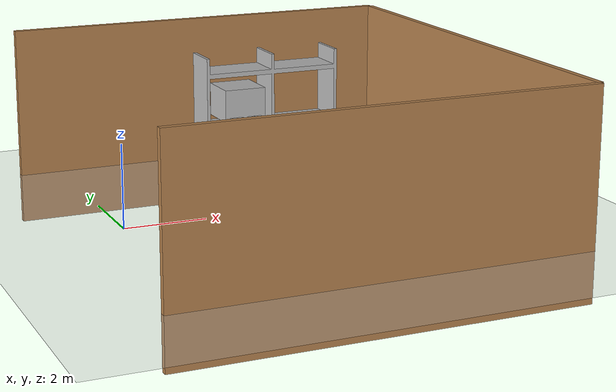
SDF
<?xml version="1.0"?>
<sdf version="1.6">
  <world name="default">

    <include>
      <uri>model://ground_plane</uri>
    </include>

    <include>
      <uri>model://sun</uri>
    </include>

    <scene>
      <shadows>false</shadows>
    </scene>

    <gui fullscreen='0'>
      <camera name='user_camera'>
        <pose frame=''>0.319654 -0.235002 9.29441 0 1.5138 0.009599</pose>
        <view_controller>orbit</view_controller>
        <projection_type>perspective</projection_type>
      </camera>
    </gui>

    <physics type="ode">
      <real_time_update_rate>1000.0</real_time_update_rate>
      <max_step_size>0.001</max_step_size>
      <real_time_factor>1</real_time_factor>
      <ode>
        <solver>
          <type>quick</type>
          <iters>150</iters>
          <precon_iters>0</precon_iters>
          <sor>1.400000</sor>
          <use_dynamic_moi_rescaling>1</use_dynamic_moi_rescaling>
        </solver>
        <constraints>
          <cfm>0.00001</cfm>
          <erp>0.2</erp>
          <contact_max_correcting_vel>2000.000000</contact_max_correcting_vel>
          <contact_surface_layer>0.01000</contact_surface_layer>
        </constraints>
      </ode>
    </physics>

    <model name="agv_warehouse">
      <static>1</static>
      <include>
        <uri>model://agv_warehouse</uri>
      </include>
    </model>

  </world>
</sdf>

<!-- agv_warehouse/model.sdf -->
<sdf version='1.6'>
  <model name='agv_warehouse'>
    <link name='Left_Wall'>
      <pose frame=''>4 5.55 0 0 0 0</pose>
      <self_collide>0</self_collide>
      <kinematic>0</kinematic>
      <visual name='Left_Wall_Visual'>
        <pose frame=''>0 0 1.25 0 -0 0</pose>
        <geometry>
          <box>
            <size>10 0.15 5</size>
          </box>
        </geometry>
        <material>
          <script>
            <uri>file://media/materials/scripts/gazebo.material</uri>
            <name>Gazebo/Wood</name>
          </script>
          <ambient>1 1 1 1</ambient>
          <diffuse>1 1 1 1</diffuse>
          <specular>0.2 0.2 0.2 1</specular>
          <emissive>0 0 0 1</emissive>
        </material>
        <cast_shadows>1</cast_shadows>
        <transparency>0</transparency>
      </visual>
      <collision name='Left_Wall_Collision'>
        <laser_retro>0</laser_retro>
        <max_contacts>10</max_contacts>
        <pose frame=''>0 0 1.25 0 -0 0</pose>
        <geometry>
          <box>
            <size>10 0.15 5</size>
          </box>
        </geometry>
        <surface>
          <friction>
            <ode>
              <mu>1</mu>
              <mu2>1</mu2>
              <fdir1>0 0 0</fdir1>
              <slip1>0</slip1>
              <slip2>0</slip2>
            </ode>
            <torsional>
              <coefficient>1</coefficient>
              <patch_radius>0</patch_radius>
              <surface_radius>0</surface_radius>
              <use_patch_radius>1</use_patch_radius>
              <ode>
                <slip>0</slip>
              </ode>
            </torsional>
          </friction>
          <bounce>
            <restitution_coefficient>0</restitution_coefficient>
            <threshold>1e+06</threshold>
          </bounce>
          <contact>
            <collide_without_contact>0</collide_without_contact>
            <collide_without_contact_bitmask>1</collide_without_contact_bitmask>
            <collide_bitmask>1</collide_bitmask>
            <ode>
              <soft_cfm>0</soft_cfm>
              <soft_erp>0.2</soft_erp>
              <kp>1e+13</kp>
              <kd>1</kd>
              <max_vel>0.01</max_vel>
              <min_depth>0</min_depth>
            </ode>
            <bullet>
              <split_impulse>1</split_impulse>
              <split_impulse_penetration_threshold>-0.01</split_impulse_penetration_threshold>
              <soft_cfm>0</soft_cfm>
              <soft_erp>0.2</soft_erp>
              <kp>1e+13</kp>
              <kd>1</kd>
            </bullet>
          </contact>
        </surface>
      </collision>
    </link>

    <link name='Front_Wall'>
      <pose frame=''>9 0 0 0 0 -1.57</pose>
      <self_collide>0</self_collide>
      <kinematic>0</kinematic>
      <visual name='Front_Wall_Visual'>
        <pose frame=''>0 0 1.25 0 -0 0</pose>
        <geometry>
          <box>
            <size>11 0.15 5</size>
          </box>
        </geometry>
        <material>
          <script>
            <uri>file://media/materials/scripts/gazebo.material</uri>
            <name>Gazebo/Wood</name>
          </script>
          <ambient>1 1 1 1</ambient>
          <diffuse>1 1 1 1</diffuse>
          <specular>0.2 0.2 0.2 1</specular>
          <emissive>0 0 0 1</emissive>
        </material>
        <cast_shadows>1</cast_shadows>
        <transparency>0</transparency>
      </visual>
      <collision name='Front_Wall_Collision'>
        <laser_retro>0</laser_retro>
        <max_contacts>10</max_contacts>
        <pose frame=''>0 0 1.25 0 -0 0</pose>
        <geometry>
          <box>
            <size>11 0.15 5</size>
          </box>
        </geometry>
        <surface>
          <friction>
            <ode>
              <mu>1</mu>
              <mu2>1</mu2>
              <fdir1>0 0 0</fdir1>
              <slip1>0</slip1>
              <slip2>0</slip2>
            </ode>
            <torsional>
              <coefficient>1</coefficient>
              <patch_radius>0</patch_radius>
              <surface_radius>0</surface_radius>
              <use_patch_radius>1</use_patch_radius>
              <ode>
                <slip>0</slip>
              </ode>
            </torsional>
          </friction>
          <bounce>
            <restitution_coefficient>0</restitution_coefficient>
            <threshold>1e+06</threshold>
          </bounce>
          <contact>
            <collide_without_contact>0</collide_without_contact>
            <collide_without_contact_bitmask>1</collide_without_contact_bitmask>
            <collide_bitmask>1</collide_bitmask>
            <ode>
              <soft_cfm>0</soft_cfm>
              <soft_erp>0.2</soft_erp>
              <kp>1e+13</kp>
              <kd>1</kd>
              <max_vel>0.01</max_vel>
              <min_depth>0</min_depth>
            </ode>
            <bullet>
              <split_impulse>1</split_impulse>
              <split_impulse_penetration_threshold>-0.01</split_impulse_penetration_threshold>
              <soft_cfm>0</soft_cfm>
              <soft_erp>0.2</soft_erp>
              <kp>1e+13</kp>
              <kd>1</kd>
            </bullet>
          </contact>
        </surface>
      </collision>
    </link>

    <link name='Right_Wall'>
      <pose frame=''>4 -5.55 0 0 0 0</pose>
      <self_collide>0</self_collide>
      <kinematic>0</kinematic>
      <visual name='Right_Wall_Visual'>
        <pose frame=''>0 0 1.25 0 -0 0</pose>
        <geometry>
          <box>
            <size>10 0.15 5</size>
          </box>
        </geometry>
        <material>
          <script>
            <uri>file://media/materials/scripts/gazebo.material</uri>
            <name>Gazebo/Wood</name>
          </script>
          <ambient>1 1 1 1</ambient>
          <diffuse>1 1 1 1</diffuse>
          <specular>0.2 0.2 0.2 1</specular>
          <emissive>0 0 0 1</emissive>
        </material>
        <cast_shadows>1</cast_shadows>
        <transparency>0</transparency>
      </visual>
      <collision name='Right_Wall_Collision'>
        <laser_retro>0</laser_retro>
        <max_contacts>10</max_contacts>
        <pose frame=''>0 0 1.25 0 -0 0</pose>
        <geometry>
          <box>
            <size>10 0.15 5</size>
          </box>
        </geometry>
        <surface>
          <friction>
            <ode>
              <mu>1</mu>
              <mu2>1</mu2>
              <fdir1>0 0 0</fdir1>
              <slip1>0</slip1>
              <slip2>0</slip2>
            </ode>
            <torsional>
              <coefficient>1</coefficient>
              <patch_radius>0</patch_radius>
              <surface_radius>0</surface_radius>
              <use_patch_radius>1</use_patch_radius>
              <ode>
                <slip>0</slip>
              </ode>
            </torsional>
          </friction>
          <bounce>
            <restitution_coefficient>0</restitution_coefficient>
            <threshold>1e+06</threshold>
          </bounce>
          <contact>
            <collide_without_contact>0</collide_without_contact>
            <collide_without_contact_bitmask>1</collide_without_contact_bitmask>
            <collide_bitmask>1</collide_bitmask>
            <ode>
              <soft_cfm>0</soft_cfm>
              <soft_erp>0.2</soft_erp>
              <kp>1e+13</kp>
              <kd>1</kd>
              <max_vel>0.01</max_vel>
              <min_depth>0</min_depth>
            </ode>
            <bullet>
              <split_impulse>1</split_impulse>
              <split_impulse_penetration_threshold>-0.01</split_impulse_penetration_threshold>
              <soft_cfm>0</soft_cfm>
              <soft_erp>0.2</soft_erp>
              <kp>1e+13</kp>
              <kd>1</kd>
            </bullet>
          </contact>
        </surface>
      </collision>
    </link>

    <model name='reck'>
      <static>1</static>
      <link name='reck'>
        <collision name='collision'>
          <pose frame=''>0 0 0 0 -0 0</pose>
          <geometry>
            <mesh>
              <uri>model://agv_common/meshes/RECK.stl</uri>
              <scale>0.001 0.001 0.001</scale>
            </mesh>
          </geometry>
        </collision>
        <visual name='visual'>
          <geometry>
            <mesh>
              <uri>model://agv_common/meshes/RECK.stl</uri>
              <scale>0.001 0.001 0.001</scale>
            </mesh>
          </geometry>
        </visual>
      </link>
      <pose frame=''>5.3 4.200 0 0 0 0</pose>
    </model>
    <model name='top_pallet'>
      <static>0</static>
      <link name='top_pallet'>
        <collision name='box_coll'>
          <pose frame=''>0 0 0.485 0 -0 0</pose>
          <geometry>
            <box>
              <size>1.1 1.1 0.73</size>
            </box>
          </geometry>
        </collision>
        <collision name='leg_coll'>
          <pose frame=''>0 0 0.06 0 -0 0</pose>
          <geometry>
            <box>
              <size>0.12 1.1 0.12</size>
            </box>
          </geometry>
        </collision>
        <collision name='leg_coll_f'>
          <pose frame=''>0.49 0 0.06 0 -0 0</pose>
          <geometry>
            <box>
              <size>0.12 1.1 0.12</size>
            </box>
          </geometry>
        </collision>
        <collision name='leg_coll_s'>
          <pose frame=''>-0.49 0 0.06 0 -0 0</pose>
          <geometry>
            <box>
              <size>0.12 1.1 0.12</size>
            </box>
          </geometry>
        </collision>
        <visual name='visual'>
          <geometry>
            <mesh>
              <uri>model://agv_common/meshes/PALLET.stl</uri>
              <scale>0.001 0.001 0.001</scale>
            </mesh>
          </geometry>
        </visual>
      </link>
      <pose frame=''>4.5075 4.200 1.3 0 0 0</pose>
    </model>
    <model name='bot_pallet'>
      <static>0</static>
      <link name='bot_pallet'>
        <collision name='box_coll'>
          <pose frame=''>0 0 0.485 0 -0 0</pose>
          <geometry>
            <box>
              <size>1.1 1.1 0.73</size>
            </box>
          </geometry>
        </collision>
        <collision name='leg_coll'>
          <pose frame=''>0 0 0.06 0 -0 0</pose>
          <geometry>
            <box>
              <size>0.12 1.1 0.12</size>
            </box>
          </geometry>
        </collision>
        <collision name='leg_coll_f'>
          <pose frame=''>0.49 0 0.06 0 -0 0</pose>
          <geometry>
            <box>
              <size>0.12 1.1 0.12</size>
            </box>
          </geometry>
        </collision>
        <collision name='leg_coll_s'>
          <pose frame=''>-0.49 0 0.06 0 -0 0</pose>
          <geometry>
            <box>
              <size>0.12 1.1 0.12</size>
            </box>
          </geometry>
        </collision>
        <visual name='visual'>
          <geometry>
            <mesh>
              <uri>model://agv_common/meshes/PALLET.stl</uri>
              <scale>0.001 0.001 0.001</scale>
            </mesh>
          </geometry>
        </visual>
      </link>
      <pose frame=''>6.1925 4.200 0 0 0 0</pose>
    </model>
  </model>
</sdf>
